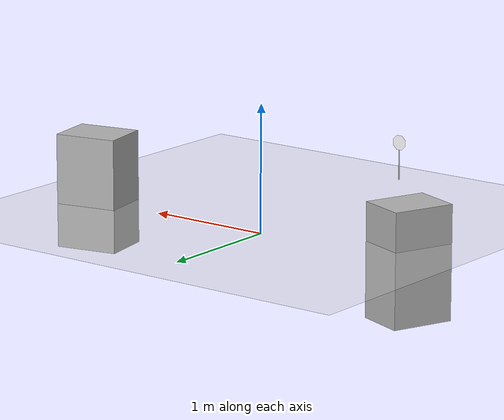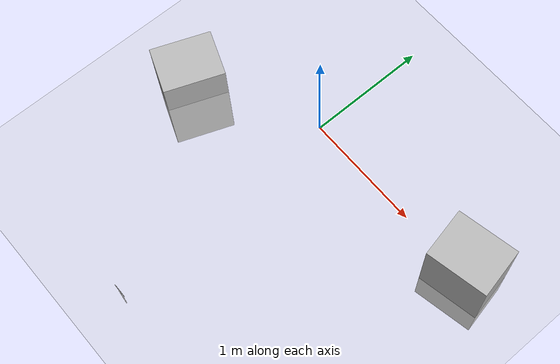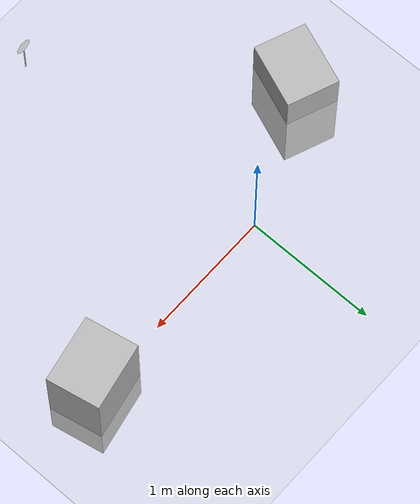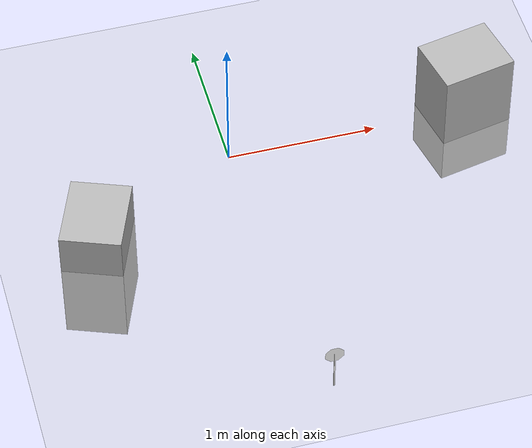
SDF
<sdf version="1.4">
  <world name="default">
    <!-- A global light source -->
    <include>
      <uri>model://sun</uri>
    </include>

    <!-- A ground plane -->
    <include>
      <uri>model://ground_plane</uri>
    </include>

    <physics type="ode">
      <real_time_update_rate>1000.0</real_time_update_rate>
      <max_step_size>0.001</max_step_size>
      <real_time_factor>1</real_time_factor>
      <ode>
        <solver>
          <type>quick</type>
          <iters>150</iters>
          <precon_iters>0</precon_iters>
          <sor>1.400000</sor>
          <use_dynamic_moi_rescaling>1</use_dynamic_moi_rescaling>
        </solver>
        <constraints>
          <cfm>0.00001</cfm>
          <erp>0.2</erp>
          <contact_max_correcting_vel>2000.000000</contact_max_correcting_vel>
          <contact_surface_layer>0.01000</contact_surface_layer>
        </constraints>
      </ode>
    </physics>

    <model name='Stop Sign'>
      <link name='link'>
        <collision name='collision'>
          <geometry>
            <mesh>
              <uri>model://stop_sign/meshes/stop_sign.dae</uri>
              <scale>.2 .2 .2</scale>
            </mesh>
          </geometry>
          <max_contacts>10</max_contacts>
          <surface>
            <contact>
              <ode/>
            </contact>
            <bounce/>
            <friction>
              <torsional>
                <ode/>
              </torsional>
              <ode/>
            </friction>
          </surface>
        </collision>
        <visual name='visual'>
          <geometry>
            <mesh>
              <uri>model://stop_sign/meshes/stop_sign.dae</uri>
              <scale>.2 .2 .2</scale>
            </mesh>
          </geometry>
          <material>
            <script>
              <uri>model://stop_sign/materials/scripts</uri>
              <uri>model://stop_sign/materials/textures</uri>
              <name>StopSign/Diffuse</name>
            </script>
          </material>
        </visual>
        <self_collide>0</self_collide>
        <inertial>
          <inertia>
            <ixx>1</ixx>
            <ixy>0</ixy>
            <ixz>0</ixz>
            <iyy>1</iyy>
            <iyz>0</iyz>
            <izz>1</izz>
          </inertia>
          <mass>1</mass>
        </inertial>
        <kinematic>0</kinematic>
        <gravity>1</gravity>
      </link>
      <pose frame=''>.15 -2 0 0 0 3.14159</pose>
    </model>

    <model name='cardboard_box1'>
      <pose frame=''>1.61279 -0.006215 0.25 0 -0 0</pose>
      <link name='link'>
        <inertial>
          <mass>2</mass>
          <inertia>
            <ixx>0.0416667</ixx>
            <ixy>0</ixy>
            <ixz>0</ixz>
            <iyy>0.0566667</iyy>
            <iyz>0</iyz>
            <izz>0.0683333</izz>
          </inertia>
        </inertial>
        <collision name='collision'>
          <geometry>
            <box>
              <size>0.5 0.4 0.9</size>
            </box>
          </geometry>
          <surface>
            <friction>
              <ode>
                <mu>1</mu>
                <mu2>1</mu2>
              </ode>
              <torsional>
                <ode/>
              </torsional>
            </friction>
            <contact>
              <ode>
                <kp>1e+07</kp>
                <kd>1</kd>
                <min_depth>0.001</min_depth>
                <max_vel>0.1</max_vel>
              </ode>
            </contact>
            <bounce/>
          </surface>
          <max_contacts>10</max_contacts>
        </collision>
        <visual name='visual'>
          <pose frame=''>0 0 -0.15 0 -0 .2</pose>
          <geometry>
            <box>
              <size>0.5 0.4 0.9</size>
            </box>
          </geometry>
        </visual>
        <self_collide>0</self_collide>
        <kinematic>0</kinematic>
        <gravity>1</gravity>
      </link>
    </model>

    <model name='cardboard_box2'>
      <pose frame=''>-1.0 -0.5 0 0 0 1.2</pose>
      <link name='link'>
        <inertial>
          <mass>2</mass>
          <inertia>
            <ixx>0.0416667</ixx>
            <ixy>0</ixy>
            <ixz>0</ixz>
            <iyy>0.0566667</iyy>
            <iyz>0</iyz>
            <izz>0.0683333</izz>
          </inertia>
        </inertial>
        <collision name='collision'>
          <geometry>
            <box>
              <size>0.5 0.4 0.9</size>
            </box>
          </geometry>
          <surface>
            <friction>
              <ode>
                <mu>1</mu>
                <mu2>1</mu2>
              </ode>
              <torsional>
                <ode/>
              </torsional>
            </friction>
            <contact>
              <ode>
                <kp>1e+07</kp>
                <kd>1</kd>
                <min_depth>0.001</min_depth>
                <max_vel>0.1</max_vel>
              </ode>
            </contact>
            <bounce/>
          </surface>
          <max_contacts>10</max_contacts>
        </collision>
        <visual name='visual'>
          <pose frame=''>0 0 -0.15 0 -0 0</pose>
          <geometry>
            <box>
              <size>0.5 0.4 0.9</size>
            </box>
          </geometry>
        </visual>
        <self_collide>0</self_collide>
        <kinematic>0</kinematic>
        <gravity>1</gravity>
      </link>
    </model>

  </world>
</sdf>
